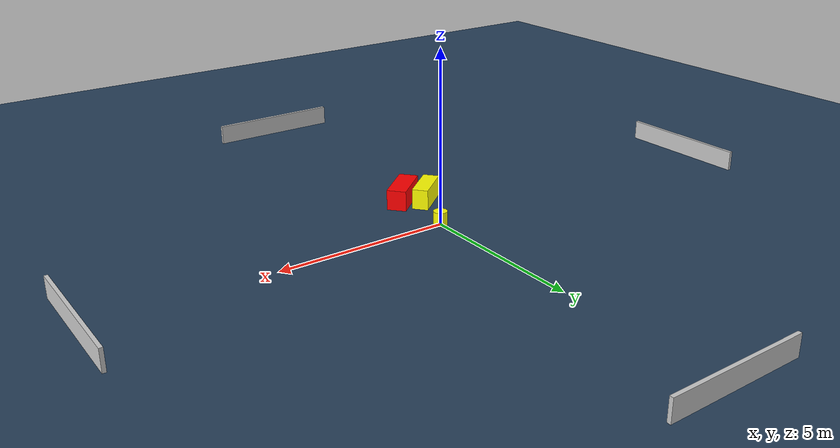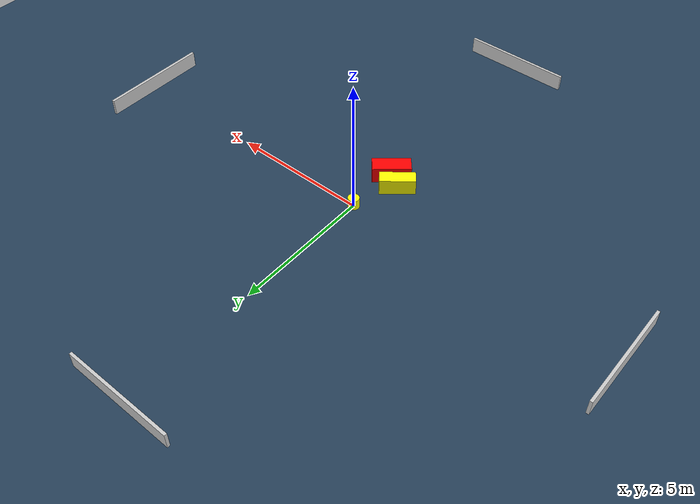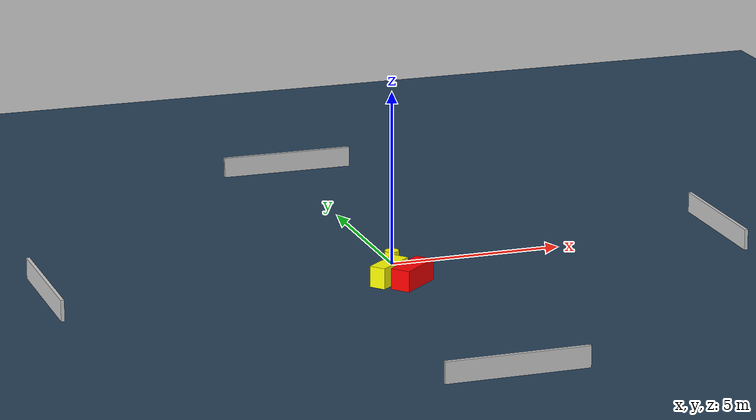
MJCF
<?xml version="1.0" ?>
<mujoco model="generated_environment">
  <option timestep="0.01" integrator="RK4" cone="elliptic"/>
  <default>
    <geom density="1"/>
  </default>
  <asset>
    <texture builtin="gradient" height="3072" name="skybox" rgb1="0.3 0.5 0.7" rgb2="0 0 0" type="skybox" width="512"/>
    <texture builtin="checker" height="300" name="groundplane" rgb1="0.2 0.3 0.4" rgb2="0.1 0.2 0.3" type="2d" width="300"/>
    <material name="groundplane" reflectance="0.2" texrepeat="5 5" texture="groundplane"/>
  </asset>
  <worldbody>
    <light dir="0 0 -1" directional="true" pos="0 0 1.5"/>
    <geom condim="3" friction="0.5 0.005 0.001" material="groundplane" name="floor" pos="0 0 0" size="0 0 0.05" type="plane"/>
    <body name="walls">
      <geom name="wall_1" condim="4" pos="-10.0 0.0 0.3" rgba="0.800000011920929 0.800000011920929 0.800000011920929 1.0" size="0.05 2.0 0.3" type="box"/>
      <geom name="wall_2" condim="4" pos="10.0 0.0 0.3" rgba="0.800000011920929 0.800000011920929 0.800000011920929 1.0" size="0.05 2.0 0.3" type="box"/>
      <geom name="wall_3" condim="4" pos="0.0 -10.0 0.3" rgba="0.800000011920929 0.800000011920929 0.800000011920929 1.0" size="2.0 0.05 0.3" type="box"/>
      <geom name="wall_4" condim="4" pos="0.0 10.0 0.3" rgba="0.800000011920929 0.800000011920929 0.800000011920929 1.0" size="2.0 0.05 0.3" type="box"/>
    </body>
    <body name="robot">
      <joint name="joint_x" type="slide" pos="0 0 0" axis="1 0 0"/>
      <joint name="joint_y" type="slide" pos="0 0 0" axis="0 1 0"/>
      <geom name="robot" type="cylinder" pos="0.0 0.0 0.2" size="0.2 0.2 0.0" mass="5.0" friction="1.0 0.005 0.0001" condim="4" rgba="1.0 1.0 0.0 1.0"/>
    </body>
    <body name="obstacle_1_movable">
      <geom name="obstacle_1_movable" condim="4" pos="-0.6204460162961889 -1.579644766144897 0.3" euler="0 0 309.3781257502958" friction="0.0 0.005 0.001" rgba="1.0 1.0 0.0 1.0" size="0.23432223134235297 0.6268595946816116 0.3" type="box" mass="0.1"/>
      <joint type="free"/>
    </body>
    <body name="obstacle_2_static">
      <geom name="obstacle_2_static" condim="4" pos="-0.06684659656083328 -1.9617561045716911 0.3" euler="0 0 130.41662617066476" friction="0.0 0.005 0.001" rgba="1.0 0.0 0.0 1.0" size="0.28314566848619516 0.6809104609318247 0.3" type="box"/>
    </body>
  </worldbody>
  <actuator>
    <motor name="actuator_x" joint="joint_x" gear="1" ctrlrange="-1 1"/>
    <motor name="actuator_y" joint="joint_y" gear="1" ctrlrange="-1 1"/>
  </actuator>
</mujoco>
